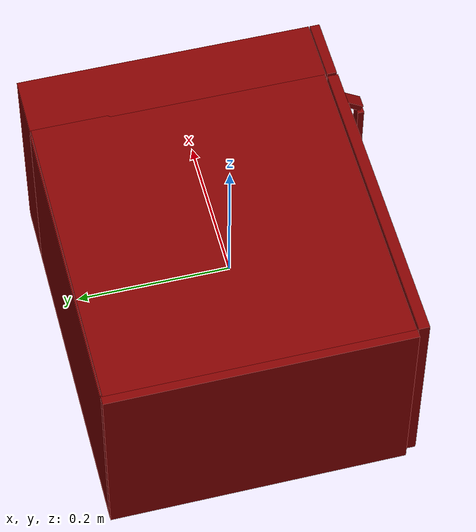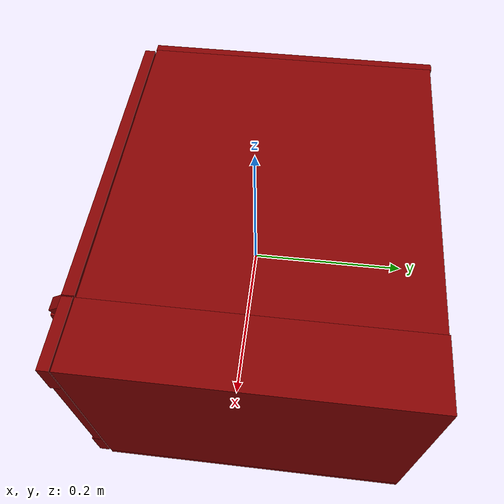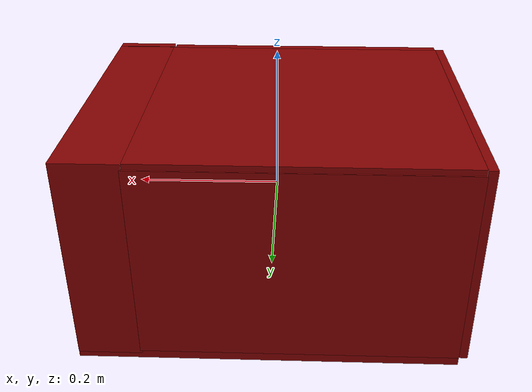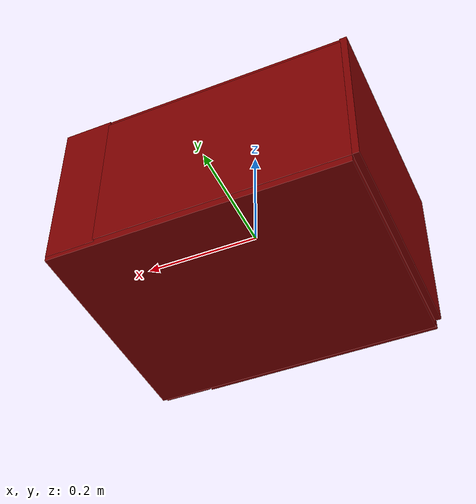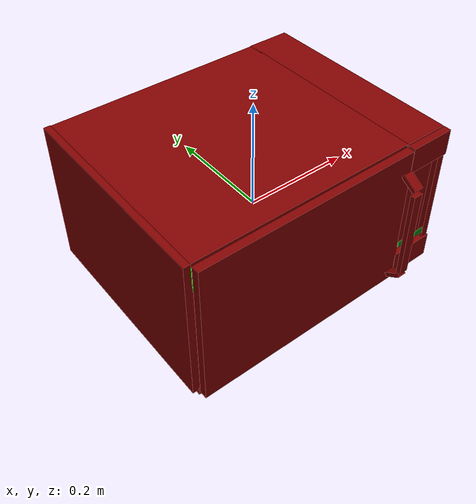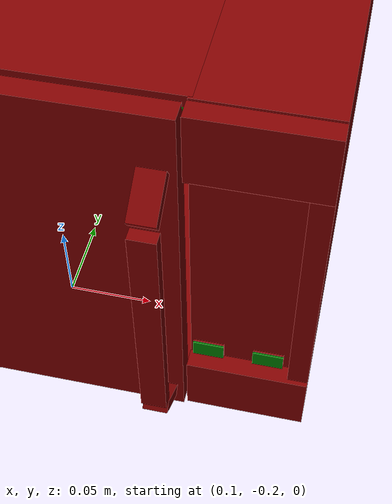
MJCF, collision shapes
<mujoco model="model">
  <compiler angle="radian"/>
  <asset>
    <mesh file="visuals/door.obj" name="door_vis"/>
    <mesh file="visuals/door_Clear.obj" name="door_Clear_vis"/>
    <mesh file="visuals/Body001.obj" name="Body001_vis"/>
    <mesh file="visuals/Button001.obj" name="Button001_vis"/>
    <mesh file="visuals/Button002.obj" name="Button002_vis"/>
    <mesh file="visuals/Disc001.obj" name="Disc001_vis"/>
    <texture file="visuals/T_BC001.png" name="Body001_material" type="2d"/>
    <material name="Body001_material" rgba="1 1 1 1.0" texture="Body001_material" shininess="0.5" specular="0.3103448502657381"/>
    <texture file="visuals/T_BC001.png" name="door_material" type="2d"/>
    <material name="door_material" rgba="1 1 1 1.0" texture="door_material" shininess="0.5" specular="0.3103448502657381"/>
    <texture file="visuals/T_BC001.png" name="door_Clear_material" type="2d"/>
    <material name="door_Clear_material" rgba="1 1 1 0.800000011920929" texture="door_Clear_material" shininess="0.5" specular="0.3103448502657381"/>
    <texture file="visuals/T_BC001.png" name="Button001_material" type="2d"/>
    <material name="Button001_material" rgba="1 1 1 1.0" texture="Button001_material" shininess="0.5" specular="0.3103448502657381"/>
    <texture file="visuals/T_BC001.png" name="Button002_material" type="2d"/>
    <material name="Button002_material" rgba="1 1 1 1.0" texture="Button002_material" shininess="0.5" specular="0.3103448502657381"/>
    <texture file="visuals/T_BC001.png" name="Disc001_material" type="2d"/>
    <material name="Disc001_material" rgba="1 1 1 1.0" texture="Disc001_material" shininess="0.5" specular="0.3103448502657381"/>
  </asset>
  <default>
    <default class="visual">
      <geom conaffinity="0" contype="0" group="1" type="mesh"/>
    </default>
    <default class="collision">
      <geom group="0" rgba="0.5 0 0 0.5"/>
    </default>
    <default class="spawn">
      <geom group="0" rgba="1 1 1 0.5" contype="0" conaffinity="0"/>
      <site group="0" rgba="1 1 1 0.5"/>
    </default>
    <default class="region">
      <geom group="1" conaffinity="0" contype="0" rgba="0 1 0 0"/>
    </default>
  </default>
  <worldbody>
    <body>
      <body name="object">
        <geom class="collision" type="box" pos="-0.022215917706489563 0.023663213476538658 -0.10485631972551346" size="0.12393129616975784 0.12393129616975784 0.004653043579310179" quat="1.0 0.0 0.0 0.0" name="tray" rgba="0 1 0 0.5"/>
        <geom class="collision" type="box" pos="0.1838272511959076 -0.18487216532230377 -0.06494089961051941" size="0.010481191799044609 0.0005438642110675573 0.0064167180098593235" quat="1.0 0.0 0.0 0.0" name="start_button" rgba="0.0 0.5 0 0.5"/>
        <geom class="collision" type="box" pos="0.22442841529846191 -0.18487216532230377 -0.06487515568733215" size="0.01033916138112545 0.0005438642110675573 0.006234104745090008" quat="1.0 0.0 0.0 0.0" name="stop_button" rgba="0.0 0.5 0 0.5"/>
        <geom mesh="Body001_vis" type="mesh" solimp="0.998 0.998 0.001" solref="0.001 1" density="100" friction="0.95 0.3 0.1" class="visual" material="Body001_material"/>
        <geom class="collision" type="box" pos="0.2108687311410904 0.02375079318881035 0.004102848470211029" size="0.04194878414273262 0.1956605166196823 0.1399775594472885" quat="1.0 0.0 0.0 0.0"/>
        <geom class="collision" type="box" pos="-0.03516127169132233 0.023708371445536613 0.14002415537834167" size="0.206753209233284 0.19425617158412933 0.0040562511421740055" quat="1.0 0.0 0.0 0.0"/>
        <geom class="collision" type="box" pos="0.005451512988656759 0.023708371445536613 -0.1355615109205246" size="0.24736599624156952 0.1952669769525528 0.008260661736130714" quat="1.0 0.0 0.0 0.0"/>
        <geom class="collision" type="box" pos="-0.03516127169132233 0.2023431658744812 0.002312679775059223" size="0.206753209233284 0.017423750832676888 0.13396337628364563" quat="1.0 0.0 0.0 0.0"/>
        <geom class="collision" type="box" pos="0.2108687311410904 -0.18015128374099731 0.12018882483243942" size="0.04194878414273262 0.0065074157901108265 0.023891570046544075" quat="1.0 0.0 0.0 0.0"/>
        <geom class="collision" type="box" pos="0.2108687311410904 -0.18015128374099731 -0.10994157195091248" size="0.04194878414273262 0.0065074157901108265 0.024013647809624672" quat="1.0 0.0 0.0 0.0"/>
        <geom class="collision" type="box" pos="0.2458171397447586 -0.17853626608848572 0.005990207195281982" size="0.0070003787986934185 0.004892399534583092 0.0920400321483612" quat="1.0 0.0 0.0 0.0"/>
        <geom class="collision" type="box" pos="-0.24684883654117584 0.024309568107128143 0.0064741941168904305" size="0.005968678276985884 0.1954573541879654 0.1376062035560608" quat="1.0 0.0 0.0 0.0"/>
        <body name="door">
          <joint axis="0.0 0.0 1.0" pos="-0.24250610172748566 -0.1795676201581955 0.004032507538795471" limited="true" name="microjoint" range="-1.5707963267948966 0.0" type="hinge" damping="1" frictionloss="1" armature=".01" stiffness="0.05"/>
          <geom mesh="door_vis" type="mesh" solimp="0.998 0.998 0.001" solref="0.001 1" density="100" friction="0.95 0.3 0.1" class="visual" material="door_material"/>
          <geom class="collision" type="box" pos="-0.03723287954926491 -0.18064264953136444 0.003586862236261368" size="0.20375436544418335 0.007146905176341534 0.13869774341583252" quat="1.0 0.0 0.0 0.0"/>
          <geom class="collision" type="box" pos="0.15363991260528564 -0.20330965518951416 0.09757246822118759" size="0.00870395079255104 0.004287287127226591 0.015512282028794289" quat="0.882134199142456 -0.4709981679916382 -0.0 0.0"/>
          <geom class="collision" type="box" pos="0.15363991260528564 -0.20330965518951416 -0.10624083876609802" size="0.00870395079255104 0.004287287127226591 0.015512282028794289" quat="0.46330711245536804 -0.8861978054046631 -0.0 0.0"/>
          <geom class="collision" type="box" pos="0.15363991260528564 -0.21564902365207672 -0.005209516733884811" size="0.00870395079255104 0.004287287127226591 0.08606600016355515" quat="1.0 0.0 0.0 0.0" name="door_handle"/>
          <body name="door_Clear">
            <geom mesh="door_Clear_vis" type="mesh" solimp="0.998 0.998 0.001" solref="0.001 1" density="100" friction="0.95 0.3 0.1" class="visual" material="door_Clear_material"/>
            <geom class="collision" type="box" pos="-0.04762668535113335 -0.17894449830055237 0.002188257873058319" size="0.15704262256622314 0.0037115609738975763 0.0853910967707634" quat="1.0 0.0 0.0 0.0"/>
          </body>
        </body>
        <body name="Button001">
          <joint axis="0.0 1.0 0.0" pos="0.18376460671424866 -0.18337133526802063 -0.06497019529342651" limited="true" name="Button001_joint" range="0.0 0.0015" type="slide" damping="1" frictionloss="1" armature=".01" stiffness="0.05"/>
          <geom mesh="Button001_vis" type="mesh" solimp="0.998 0.998 0.001" solref="0.001 1" density="100" friction="0.95 0.3 0.1" class="visual" material="Button001_material"/>
          <geom class="collision" type="box" pos="0.22442841529846191 -0.18319642543792725 -0.06487515568733215" size="0.01033916138112545 0.0005438642110675573 0.006234104745090008" quat="1.0 0.0 0.0 0.0"/>
        </body>
        <body name="Button002">
          <joint axis="0.0 1.0 0.0" pos="0.22451114654541016 -0.18337133526802063 -0.065008245408535" limited="true" name="Button002_joint" range="0.0 0.0015" type="slide" damping="1" frictionloss="1" armature=".01" stiffness="0.05"/>
          <geom mesh="Button002_vis" type="mesh" solimp="0.998 0.998 0.001" solref="0.001 1" density="100" friction="0.95 0.3 0.1" class="visual" material="Button002_material"/>
          <geom class="collision" type="box" pos="0.1838272511959076 -0.18319642543792725 -0.06494089961051941" size="0.010481191799044609 0.0005438642110675573 0.0064167180098593235" quat="1.0 0.0 0.0 0.0"/>
        </body>
        <body name="Disc001">
          <joint axis="0.0 0.0 1.0" pos="-0.022535916417837143 0.024034585803747177 -0.11442966014146805" limited="false" name="Disc001_joint" range="0 360" type="hinge" damping="1" frictionloss="1" armature=".01" stiffness="0.05"/>
          <geom mesh="Disc001_vis" type="mesh" solimp="0.998 0.998 0.001" solref="0.001 1" density="100" friction="0.95 0.3 0.1" class="visual" material="Disc001_material"/>
          <geom class="collision" type="cylinder" pos="-0.022215917706489563 0.023663213476538658 -0.11824376881122589" size="0.12393129616975784 0.004653043579310179" quat="1.0 0.0 0.0 0.0"/>
        </body>
        <geom class="region" name="reg_main" type="box" pos="0.0 0.015988677740097046 0.0" size="0.2528175115585327 0.2037782371044159 0.14408040046691895"/>
        <geom class="region" name="reg_int" type="box" pos="-0.03665672987699509 0.008996829390525818 0.0036899521946907043" size="0.2043110355734825 0.1782136708498001 0.13110216706991196"/>
      </body>
    </body>
  </worldbody>
  <actuator>
    <motor name="microjoint_actuator" joint="microjoint" gear="10"/>
    <motor name="Button001_joint_actuator" joint="Button001_joint" gear="0.1"/>
    <motor name="Button002_joint_actuator" joint="Button002_joint" gear="0.1"/>
    <motor name="Disc001_joint_actuator" joint="Disc001_joint" gear="10"/>
  </actuator>
</mujoco>
